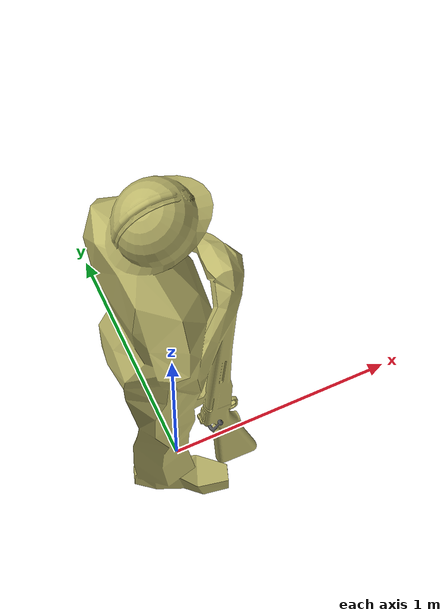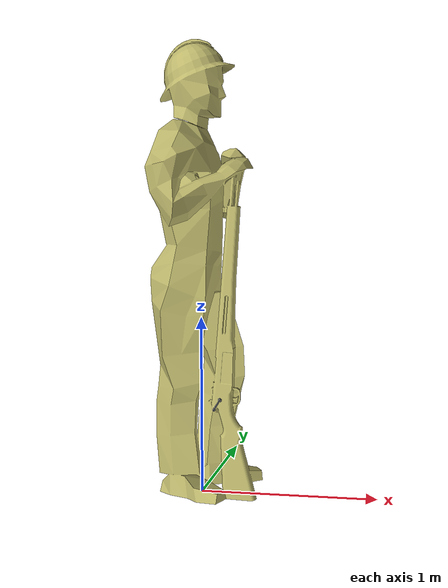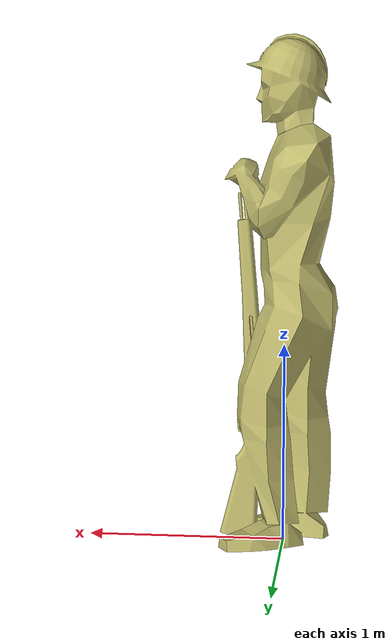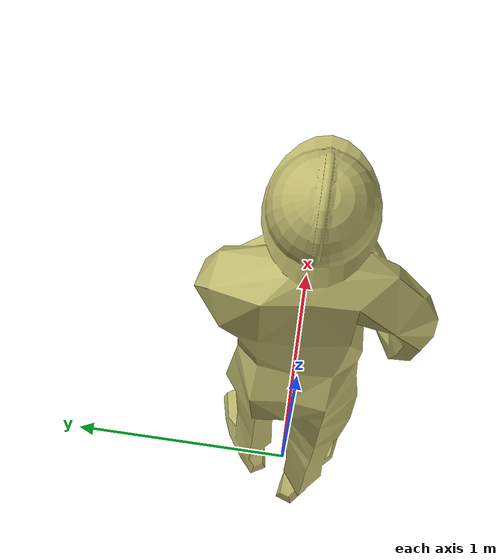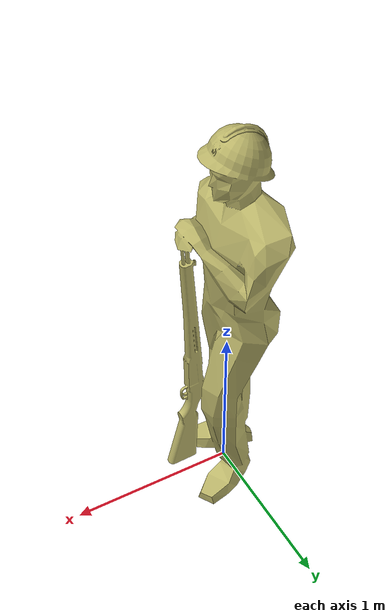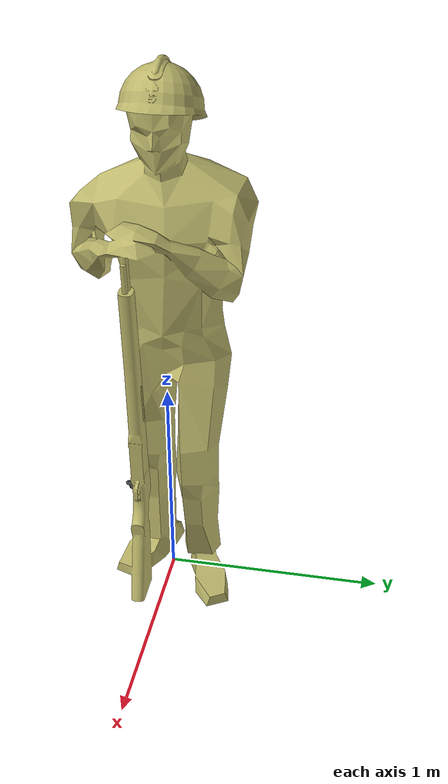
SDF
<?xml version="1.0" ?>
<sdf version="1.5">
  <model name="statue_tall_1">
    <link name="link">
      <pose>0 0 0 0 0 0</pose>
      <collision name="collision">
        <geometry>
          <mesh>
            <uri>model://statue_tall_1/meshes/model.dae</uri>
          </mesh>
        </geometry>
      </collision>
      <visual name="visual">
        <geometry>
          <mesh>
            <uri>model://statue_tall_1/meshes/model.dae</uri>
          </mesh>
        </geometry>
      </visual>
    </link>
    <static>1</static>
  </model>
</sdf>
